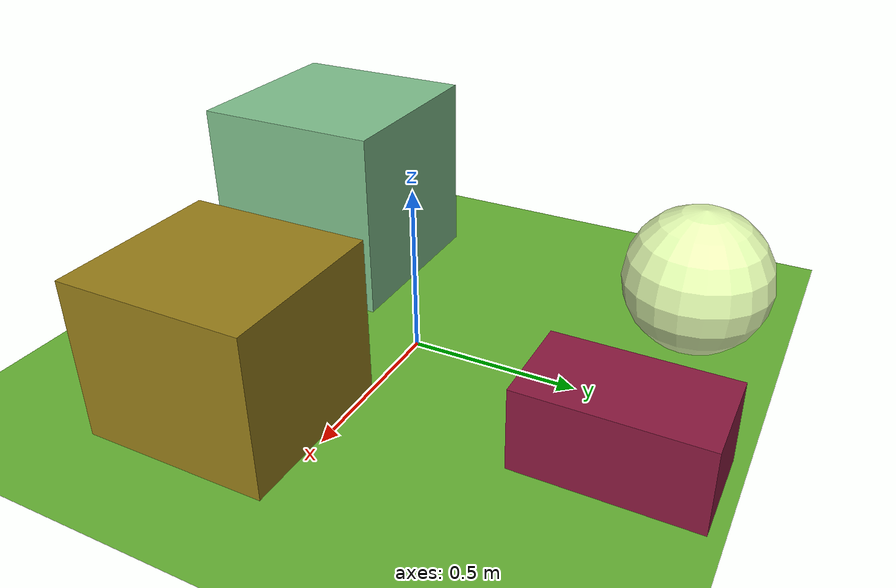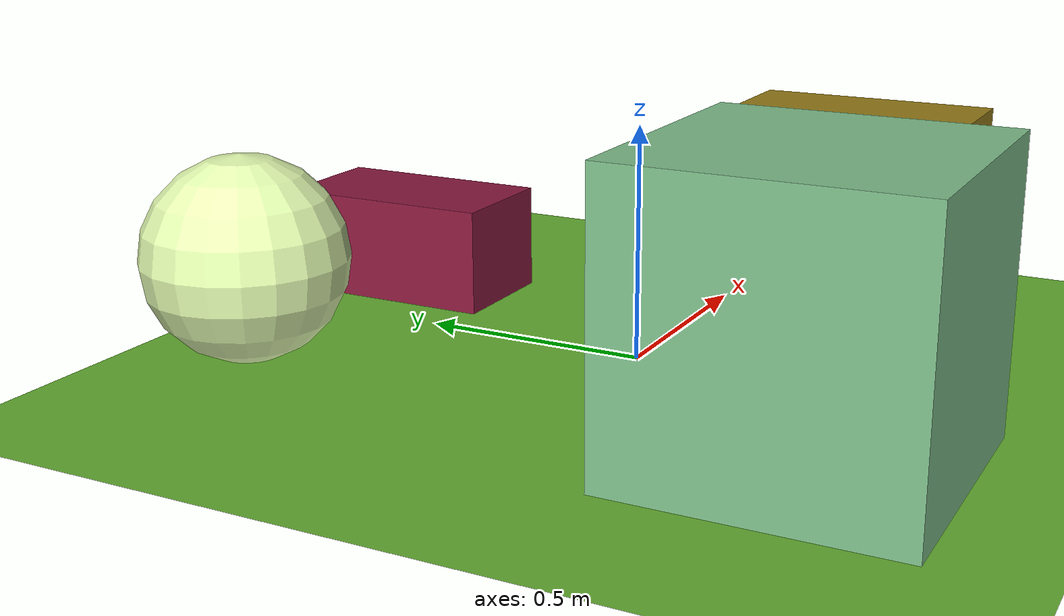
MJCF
<mujoco>
   <asset>
<texture type="skybox" builtin="gradient" rgb1="0.4 0.5 0.6" rgb2="0.9 0.3 0.2" width="256" height="256"/>
<texture name="gradient_0" builtin="gradient" rgb1="0.5 0.2 0.1" rgb2="0.6 0.0 0.4" width="200" height="200"/>
<texture name="checker_1" builtin="checker" rgb1="0.2 0.7 0.1" rgb2="1.0 0.3 0.1" width="200" height="200"/>
<texture name="checker_2" builtin="checker" rgb1="0.9 1.0 0.8" rgb2="0.1 0.5 0.3" width="200" height="200"/>
<texture name="flat_3" builtin="flat" rgb1="0.9 1.0 0.7" rgb2="0.9 1.0 0.7"  width="200" height="200"/><material name="gradient_0_mat" reflectance="0" texture="gradient_0" texuniform="true"/>
<material name="checker_1_mat" reflectance="0" texrepeat="7 7" texture="checker_1" texuniform="false" />
<material name="checker_2_mat" reflectance="0" texrepeat="2 2" texture="checker_2" texuniform="false" />
<material name="flat_3_mat" reflectance="0" texture="flat_3" texuniform="true"/>
   </asset>

   <worldbody>
      <light diffuse=".9 .9 .9" pos="0 0 3" dir="0 0 -1"/>
     <geom type="plane" size="1 1 0.1" rgba="0.4 0.7 0.2 1"/>
<geom type="box" pos="0.24 0.71 0.12" size="0.14 0.25 0.12" material="gradient_0_mat" />
<geom type="box" pos="0.49 -0.28 0.23" size="0.25 0.27 0.23" material="checker_1_mat" />
<geom type="box" pos="-0.38 -0.5 0.29" size="0.29 0.29 0.29" material="checker_2_mat" />
<geom type="sphere" pos="-0.37 0.73 0.22" size="0.22 0.22 0.22" material="flat_3_mat" /><camera euler="60 0 180" fovy="60" name="camera_a" pos="0 -1.5 1"></camera>   </worldbody>
</mujoco>
